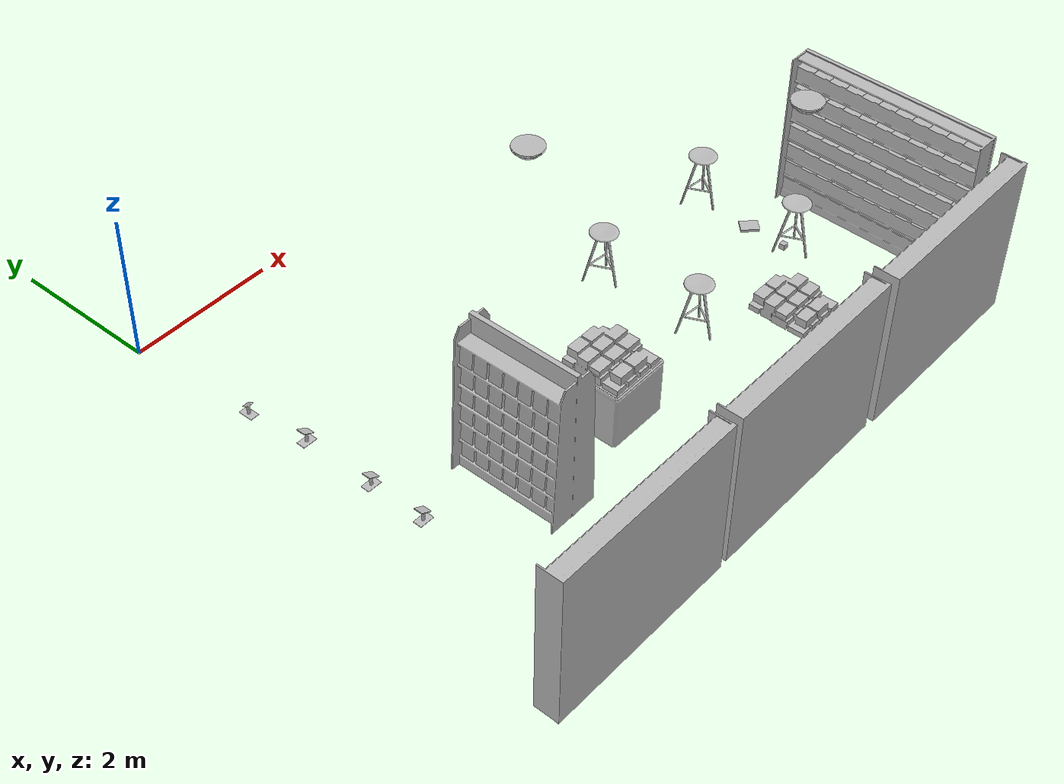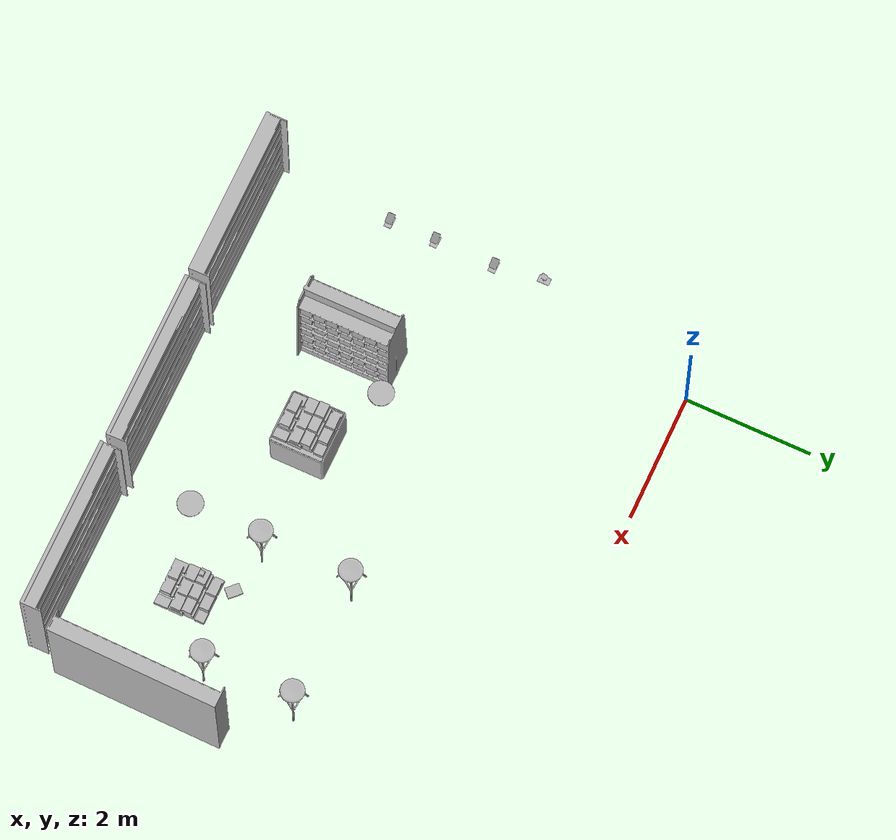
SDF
<sdf version="1.6">
 <world name="default">
  <model name="BookE_01_004">
   <link name="aws_robomaker_retail_BookE_01::link">
    <inertial>
     <mass>1</mass>
     <inertia><ixy>0</ixy><ixz>0</ixz><iyz>0</iyz><ixx>0.0666</ixx><iyy>0.0346</iyy><izz>0.0986</izz></inertia>
    </inertial>
    <collision name="collision">
     <geometry>
      <mesh>
       <uri>file://models/aws_robomaker_retail_BookE_01/meshes/aws_BookE_01_collision.DAE</uri>
       <scale>1 1 1</scale>
      </mesh>
     </geometry>
    </collision>
    <visual name="visual">
     <geometry>
      <mesh><uri>file://models/aws_robomaker_retail_BookE_01/meshes/aws_BookE_01_visual.DAE</uri></mesh>
     </geometry>
     <meta><layer>1</layer></meta>
    </visual>
   </link>
   <static>1</static>
   <pose>5.67723 -4.6492 0.946394 0.0001 6e-06 -2.35575</pose>
  </model>
  <model name="BookD_01_001">
   <link name="aws_robomaker_retail_BookD_01::link">
    <inertial><mass>0.5</mass></inertial>
    <collision name="collision">
     <geometry>
      <mesh>
       <uri>file://models/aws_robomaker_retail_BookD_01/meshes/aws_BookD_01_collision.DAE</uri>
       <scale>1 1 1</scale>
      </mesh>
     </geometry>
    </collision>
    <visual name="visual">
     <geometry>
      <mesh><uri>file://models/aws_robomaker_retail_BookD_01/meshes/aws_BookD_01_visual.DAE</uri></mesh>
     </geometry>
     <meta><layer>1</layer></meta>
    </visual>
   </link>
   <static>1</static>
   <pose>5.72005 -5.36588 0.022179 0.003452 -1e-06 0.000652</pose>
  </model>
  <model name="BookF_01_002">
   <link name="aws_robomaker_retail_BookF_01::link">
    <inertial>
     <mass>10</mass>
     <inertia>
      <ixx>0.583817</ixx>
      <ixy>0</ixy>
      <ixz>0</ixz>
      <iyy>0.502925</iyy>
      <iyz>0</iyz>
      <izz>0.99304</izz>
     </inertia>
    </inertial>
    <collision name="collision">
     <geometry>
      <mesh>
       <uri>file://models/aws_robomaker_retail_BookF_01/meshes/aws_BookF_01_collision.DAE</uri>
       <scale>1 1 1</scale>
      </mesh>
     </geometry>
    </collision>
    <visual name="visual">
     <geometry>
      <mesh><uri>file://models/aws_robomaker_retail_BookF_01/meshes/aws_BookF_01_visual.DAE</uri></mesh>
     </geometry>
     <meta><layer>1</layer></meta>
    </visual>
   </link>
   <static>1</static>
   <pose>2.90298 -4.76075 0.75826 0.00345 6e-06 -0.00225</pose>
  </model>
  <model name="BookshelfA_01_002">
   <link name="aws_robomaker_retail_BookshelfA_01::link">
    <inertial>
     <mass>50</mass>
     <inertia><ixx>27.7341</ixx><ixy>0</ixy><ixz>0</ixz><iyy>20.9361</iyy><iyz>0</iyz><izz>11.3596</izz></inertia>
    </inertial>
    <collision name="collision">
     <geometry>
      <mesh>
       <uri>file://models/aws_robomaker_retail_BookshelfA_01/meshes/aws_BookshelfA_01_collision.DAE</uri>
       <scale>1 1 1</scale>
      </mesh>
     </geometry>
    </collision>
    <visual name="visual">
     <geometry>
      <mesh><uri>file://models/aws_robomaker_retail_BookshelfA_01/meshes/aws_BookshelfA_01_visual.DAE</uri></mesh>
     </geometry>
     <meta><layer>1</layer></meta>
    </visual>
   </link>
   <static>1</static>
   <pose>1.40515 -4.76165 0.003411 0 -0 0</pose>
  </model>
  <model name="BookshelfB_01_003">
   <link name="aws_robomaker_retail_BookshelfB_01::link">
    <inertial>
     <mass>50</mass>
     <inertia><ixx>19.8742</ixx><ixy>0</ixy><ixz>0</ixz><iyy>49.1263</iyy><iyz>0</iyz><izz>30.2231</izz></inertia>
    </inertial>
    <collision name="collision">
     <geometry>
      <mesh>
       <uri>file://models/aws_robomaker_retail_BookshelfB_01/meshes/aws_BookshelfB_01_collision.DAE</uri>
       <scale>1 1 1</scale>
      </mesh>
     </geometry>
    </collision>
    <visual name="visual">
     <geometry>
      <mesh><uri>file://models/aws_robomaker_retail_BookshelfB_01/meshes/aws_BookshelfB_01_visual.DAE</uri></mesh>
     </geometry>
     <meta><layer>1</layer></meta>
    </visual>
   </link>
   <static>1</static>
   <pose>0.522246 -6.9715 0.017947 -0.003292 0 0</pose>
  </model>
  <model name="BookshelfB_01_004">
   <link name="aws_robomaker_retail_BookshelfB_01::link">
    <inertial>
     <mass>50</mass>
     <inertia><ixx>19.8742</ixx><ixy>0</ixy><ixz>0</ixz><iyy>49.1263</iyy><iyz>0</iyz><izz>30.2231</izz></inertia>
    </inertial>
    <collision name="collision">
     <geometry>
      <mesh>
       <uri>file://models/aws_robomaker_retail_BookshelfB_01/meshes/aws_BookshelfB_01_collision.DAE</uri>
       <scale>1 1 1</scale>
      </mesh>
     </geometry>
    </collision>
    <visual name="visual">
     <geometry>
      <mesh><uri>file://models/aws_robomaker_retail_BookshelfB_01/meshes/aws_BookshelfB_01_visual.DAE</uri></mesh>
     </geometry>
     <meta><layer>1</layer></meta>
    </visual>
   </link>
   <static>1</static>
   <pose>3.29339 -6.96366 0.017383 8e-06 -2e-06 -0</pose>
  </model>
  <model name="BookshelfB_01_005">
   <link name="aws_robomaker_retail_BookshelfB_01::link">
    <inertial>
     <mass>50</mass>
     <inertia><ixx>19.8742</ixx><ixy>0</ixy><ixz>0</ixz><iyy>49.1263</iyy><iyz>0</iyz><izz>30.2231</izz></inertia>
    </inertial>
    <collision name="collision">
     <geometry>
      <mesh>
       <uri>file://models/aws_robomaker_retail_BookshelfB_01/meshes/aws_BookshelfB_01_collision.DAE</uri>
       <scale>1 1 1</scale>
      </mesh>
     </geometry>
    </collision>
    <visual name="visual">
     <geometry>
      <mesh><uri>file://models/aws_robomaker_retail_BookshelfB_01/meshes/aws_BookshelfB_01_visual.DAE</uri></mesh>
     </geometry>
     <meta><layer>1</layer></meta>
    </visual>
   </link>
   <static>1</static>
   <pose>6.08038 -6.98766 0.017409 0.000174 4e-06 0</pose>
  </model>
  <model name="BookshelfB_01_006">
   <link name="aws_robomaker_retail_BookshelfB_01::link">
    <inertial>
     <mass>50</mass>
     <inertia><ixx>19.8742</ixx><ixy>0</ixy><ixz>0</ixz><iyy>49.1263</iyy><iyz>0</iyz><izz>30.2231</izz></inertia>
    </inertial>
    <collision name="collision">
     <geometry>
      <mesh>
       <uri>file://models/aws_robomaker_retail_BookshelfB_01/meshes/aws_BookshelfB_01_collision.DAE</uri>
       <scale>1 1 1</scale>
      </mesh>
     </geometry>
    </collision>
    <visual name="visual">
     <geometry>
      <mesh><uri>file://models/aws_robomaker_retail_BookshelfB_01/meshes/aws_BookshelfB_01_visual.DAE</uri></mesh>
     </geometry>
     <meta><layer>1</layer></meta>
    </visual>
   </link>
   <static>1</static>
   <pose>7.47833 -5.2983 0.017443 -0.001974 -0.000211 1.55406</pose>
  </model>
  <model name="BookshelfC_01_002">
   <link name="aws_robomaker_retail_BookshelfC_01::link">
    <inertial>
     <mass>50</mass>
     <inertia><ixx>5.5865</ixx><ixy>0</ixy><ixz>0</ixz><iyy>5.47324</iyy><iyz>0</iyz><izz>6.23277</izz></inertia>
    </inertial>
    <collision name="collision">
     <geometry>
      <mesh>
       <uri>file://models/aws_robomaker_retail_BookshelfC_01/meshes/aws_BookshelfC_01_collision.DAE</uri>
       <scale>1 1 1</scale>
      </mesh>
     </geometry>
    </collision>
    <visual name="visual">
     <geometry>
      <mesh><uri>file://models/aws_robomaker_retail_BookshelfC_01/meshes/aws_BookshelfC_01_visual.DAE</uri></mesh>
     </geometry>
     <meta><layer>1</layer></meta>
    </visual>
   </link>
   <static>1</static>
   <pose>2.91545 -4.76171 -0.003455 0.003452 -0 1.4e-05</pose>
  </model>
  <model name="ChairB_01_003">
   <link name="aws_robomaker_retail_ChairB_01::link">
    <inertial>
     <mass>3</mass>
     <inertia>
      <ixx>0.188185</ixx>
      <ixy>0</ixy>
      <ixz>0</ixz>
      <iyy>0.190617</iyy>
      <iyz>0</iyz>
      <izz>0.100999</izz>
     </inertia>
    </inertial>
    <collision name="collision">
     <geometry>
      <mesh>
       <uri>file://models/aws_robomaker_retail_ChairB_01/meshes/aws_ChairB_01_collision.DAE</uri>
       <scale>1 1 1</scale>
      </mesh>
     </geometry>
    </collision>
    <visual name="visual">
     <geometry>
      <mesh><uri>file://models/aws_robomaker_retail_ChairB_01/meshes/aws_ChairB_01_visual.DAE</uri></mesh>
     </geometry>
     <meta><layer>1</layer></meta>
    </visual>
   </link>
   <static>1</static>
   <pose>6.64396 -3.24663 0.022051 0 0.006174 8.8e-05</pose>
  </model>
  <model name="ChairB_01_004">
   <link name="aws_robomaker_retail_ChairB_01::link">
    <inertial>
     <mass>3</mass>
     <inertia>
      <ixx>0.188185</ixx>
      <ixy>0</ixy>
      <ixz>0</ixz>
      <iyy>0.190617</iyy>
      <iyz>0</iyz>
      <izz>0.100999</izz>
     </inertia>
    </inertial>
    <collision name="collision">
     <geometry>
      <mesh>
       <uri>file://models/aws_robomaker_retail_ChairB_01/meshes/aws_ChairB_01_collision.DAE</uri>
       <scale>1 1 1</scale>
      </mesh>
     </geometry>
    </collision>
    <visual name="visual">
     <geometry>
      <mesh><uri>file://models/aws_robomaker_retail_ChairB_01/meshes/aws_ChairB_01_visual.DAE</uri></mesh>
     </geometry>
     <meta><layer>1</layer></meta>
    </visual>
   </link>
   <static>1</static>
   <pose>6.64396 -4.6816 0.022051 0 0.006174 8.8e-05</pose>
  </model>
  <model name="ChairB_01_007">
   <link name="aws_robomaker_retail_ChairB_01::link">
    <inertial>
     <mass>3</mass>
     <inertia>
      <ixx>0.188185</ixx>
      <ixy>0</ixy>
      <ixz>0</ixz>
      <iyy>0.190617</iyy>
      <iyz>0</iyz>
      <izz>0.100999</izz>
     </inertia>
    </inertial>
    <collision name="collision">
     <geometry>
      <mesh>
       <uri>file://models/aws_robomaker_retail_ChairB_01/meshes/aws_ChairB_01_collision.DAE</uri>
       <scale>1 1 1</scale>
      </mesh>
     </geometry>
    </collision>
    <visual name="visual">
     <geometry>
      <mesh><uri>file://models/aws_robomaker_retail_ChairB_01/meshes/aws_ChairB_01_visual.DAE</uri></mesh>
     </geometry>
     <meta><layer>1</layer></meta>
    </visual>
   </link>
   <static>1</static>
   <pose>4.6533 -3.24663 0.022051 0 0.006174 8.8e-05</pose>
  </model>
  <model name="ChairB_01_008">
   <link name="aws_robomaker_retail_ChairB_01::link">
    <inertial>
     <mass>3</mass>
     <inertia>
      <ixx>0.188185</ixx>
      <ixy>0</ixy>
      <ixz>0</ixz>
      <iyy>0.190617</iyy>
      <iyz>0</iyz>
      <izz>0.100999</izz>
     </inertia>
    </inertial>
    <collision name="collision">
     <geometry>
      <mesh>
       <uri>file://models/aws_robomaker_retail_ChairB_01/meshes/aws_ChairB_01_collision.DAE</uri>
       <scale>1 1 1</scale>
      </mesh>
     </geometry>
    </collision>
    <visual name="visual">
     <geometry>
      <mesh><uri>file://models/aws_robomaker_retail_ChairB_01/meshes/aws_ChairB_01_visual.DAE</uri></mesh>
     </geometry>
     <meta><layer>1</layer></meta>
    </visual>
   </link>
   <static>1</static>
   <pose>4.6533 -4.6816 0.022051 0 0.006174 8.8e-05</pose>
  </model>
  <model name="TabletB_01_005">
   <link name="aws_robomaker_retail_TabletB_01::link">
    <inertial>
     <mass>0.161</mass>
     <inertia>
      <ixx>0.346954</ixx>
      <ixy>0</ixy>
      <ixz>0</ixz>
      <iyy>0.177288</iyy>
      <iyz>0</iyz>
      <izz>0.521826</izz>
     </inertia>
    </inertial>
    <collision name="collision">
     <geometry>
      <mesh>
       <uri>file://models/aws_robomaker_retail_TabletB_01/meshes/aws_TabletB_01_collision.DAE</uri>
       <scale>1 1 1</scale>
      </mesh>
     </geometry>
    </collision>
    <visual name="visual">
     <geometry>
      <mesh><uri>file://models/aws_robomaker_retail_TabletB_01/meshes/aws_TabletB_01_visual.DAE</uri></mesh>
     </geometry>
     <meta><layer>1</layer></meta>
    </visual>
   </link>
   <static>1</static>
   <pose>-0.378561 -4.95498 1.18472 0.518383 0.023342 1.56451</pose>
  </model>
  <model name="TabletB_01_006">
   <link name="aws_robomaker_retail_TabletB_01::link">
    <inertial>
     <mass>0.161</mass>
     <inertia>
      <ixx>0.346954</ixx>
      <ixy>0</ixy>
      <ixz>0</ixz>
      <iyy>0.177288</iyy>
      <iyz>0</iyz>
      <izz>0.521826</izz>
     </inertia>
    </inertial>
    <collision name="collision">
     <geometry>
      <mesh>
       <uri>file://models/aws_robomaker_retail_TabletB_01/meshes/aws_TabletB_01_collision.DAE</uri>
       <scale>1 1 1</scale>
      </mesh>
     </geometry>
    </collision>
    <visual name="visual">
     <geometry>
      <mesh><uri>file://models/aws_robomaker_retail_TabletB_01/meshes/aws_TabletB_01_visual.DAE</uri></mesh>
     </geometry>
     <meta><layer>1</layer></meta>
    </visual>
   </link>
   <static>1</static>
   <pose>-0.378561 -4.22717 1.18472 0.518383 0.023342 1.56451</pose>
  </model>
  <model name="TabletB_01_007">
   <link name="aws_robomaker_retail_TabletB_01::link">
    <inertial>
     <mass>0.161</mass>
     <inertia>
      <ixx>0.346954</ixx>
      <ixy>0</ixy>
      <ixz>0</ixz>
      <iyy>0.177288</iyy>
      <iyz>0</iyz>
      <izz>0.521826</izz>
     </inertia>
    </inertial>
    <collision name="collision">
     <geometry>
      <mesh>
       <uri>file://models/aws_robomaker_retail_TabletB_01/meshes/aws_TabletB_01_collision.DAE</uri>
       <scale>1 1 1</scale>
      </mesh>
     </geometry>
    </collision>
    <visual name="visual">
     <geometry>
      <mesh><uri>file://models/aws_robomaker_retail_TabletB_01/meshes/aws_TabletB_01_visual.DAE</uri></mesh>
     </geometry>
     <meta><layer>1</layer></meta>
    </visual>
   </link>
   <static>1</static>
   <pose>-0.378561 -3.28055 1.18472 0.518383 0.023342 1.56451</pose>
  </model>
  <model name="Holder_01_002">
   <link name="aws_robomaker_retail_Holder_01::link">
    <inertial><mass>1</mass></inertial>
    <collision name="collision">
     <geometry>
      <mesh>
       <uri>file://models/aws_robomaker_retail_Holder_01/meshes/aws_Holder_01_collision.DAE</uri>
       <scale>1 1 1</scale>
      </mesh>
     </geometry>
    </collision>
    <visual name="visual">
     <geometry>
      <mesh><uri>file://models/aws_robomaker_retail_Holder_01/meshes/aws_Holder_01_visual.DAE</uri></mesh>
     </geometry>
     <meta><layer>2</layer></meta>
    </visual>
   </link>
   <static>1</static>
   <pose>-0.491632 -2.52869 1.03776 0 0 -3.13015</pose>
  </model>
  <model name="Holder_01_013">
   <link name="aws_robomaker_retail_Holder_01::link">
    <inertial><mass>1</mass></inertial>
    <collision name="collision">
     <geometry>
      <mesh>
       <uri>file://models/aws_robomaker_retail_Holder_01/meshes/aws_Holder_01_collision.DAE</uri>
       <scale>1 1 1</scale>
      </mesh>
     </geometry>
    </collision>
    <visual name="visual">
     <geometry>
      <mesh><uri>file://models/aws_robomaker_retail_Holder_01/meshes/aws_Holder_01_visual.DAE</uri></mesh>
     </geometry>
     <meta><layer>2</layer></meta>
    </visual>
   </link>
   <static>1</static>
   <pose>-0.372529 -4.96036 1.03776 0 -0 1.55</pose>
  </model>
  <model name="Holder_01_014">
   <link name="aws_robomaker_retail_Holder_01::link">
    <inertial><mass>1</mass></inertial>
    <collision name="collision">
     <geometry>
      <mesh>
       <uri>file://models/aws_robomaker_retail_Holder_01/meshes/aws_Holder_01_collision.DAE</uri>
       <scale>1 1 1</scale>
      </mesh>
     </geometry>
    </collision>
    <visual name="visual">
     <geometry>
      <mesh><uri>file://models/aws_robomaker_retail_Holder_01/meshes/aws_Holder_01_visual.DAE</uri></mesh>
     </geometry>
     <meta><layer>2</layer></meta>
    </visual>
   </link>
   <static>1</static>
   <pose>-0.372529 -4.22682 1.03776 0 -0 1.55</pose>
  </model>
  <model name="Holder_01_015">
   <link name="aws_robomaker_retail_Holder_01::link">
    <inertial><mass>1</mass></inertial>
    <collision name="collision">
     <geometry>
      <mesh>
       <uri>file://models/aws_robomaker_retail_Holder_01/meshes/aws_Holder_01_collision.DAE</uri>
       <scale>1 1 1</scale>
      </mesh>
     </geometry>
    </collision>
    <visual name="visual">
     <geometry>
      <mesh><uri>file://models/aws_robomaker_retail_Holder_01/meshes/aws_Holder_01_visual.DAE</uri></mesh>
     </geometry>
     <meta><layer>2</layer></meta>
    </visual>
   </link>
   <static>1</static>
   <pose>-0.372529 -3.28632 1.03776 0 -0 1.55</pose>
  </model>
  <model name="LightA_01_001">
   <link name="aws_robomaker_retail_LightA_01::link">
    <inertial><mass>1</mass></inertial>
    <collision name="collision">
     <geometry>
      <mesh>
       <uri>file://models/aws_robomaker_retail_LightA_01/meshes/aws_LightA_01_collision.DAE</uri>
       <scale>1 1 1</scale>
      </mesh>
     </geometry>
    </collision>
    <visual name="visual">
     <geometry>
      <mesh><uri>file://models/aws_robomaker_retail_LightA_01/meshes/aws_LightA_01_visual.DAE</uri></mesh>
     </geometry>
     <meta><layer>3</layer></meta>
    </visual>
   </link>
   <static>1</static>
   <pose>2.77442 -3.62815 3.15033 0 -0 0</pose>
  </model>
  <model name="LightA_01_002">
   <link name="aws_robomaker_retail_LightA_01::link">
    <inertial><mass>1</mass></inertial>
    <collision name="collision">
     <geometry>
      <mesh>
       <uri>file://models/aws_robomaker_retail_LightA_01/meshes/aws_LightA_01_collision.DAE</uri>
       <scale>1 1 1</scale>
      </mesh>
     </geometry>
    </collision>
    <visual name="visual">
     <geometry>
      <mesh><uri>file://models/aws_robomaker_retail_LightA_01/meshes/aws_LightA_01_visual.DAE</uri></mesh>
     </geometry>
     <meta><layer>3</layer></meta>
    </visual>
   </link>
   <static>1</static>
   <pose>5.38399 -5.38371 3.15033 0 -0 0</pose>
  </model>
  <model name="MagicCube_01_001">
   <link name="aws_robomaker_retail_MagicCube_01::link">
    <inertial>
     <mass>0.2</mass>
     <inertia><ixx>0.01</ixx><ixy>0</ixy><ixz>0</ixz><iyy>0.01</iyy><iyz>0</iyz><izz>0.01</izz></inertia>
    </inertial>
    <collision name="collision">
     <geometry>
      <mesh>
       <uri>file://models/aws_robomaker_retail_MagicCube_01/meshes/aws_MagicCube_01_collision.DAE</uri>
       <scale>1 1 1</scale>
      </mesh>
     </geometry>
    </collision>
    <visual name="visual">
     <geometry>
      <mesh><uri>file://models/aws_robomaker_retail_MagicCube_01/meshes/aws_MagicCube_01_visual.DAE</uri></mesh>
     </geometry>
     <meta><layer>1</layer></meta>
    </visual>
   </link>
   <static>1</static>
   <pose>5.66756 -5.17491 0.968597 1.55994 -1e-06 -1.55541</pose>
  </model>
 </world>
</sdf>
